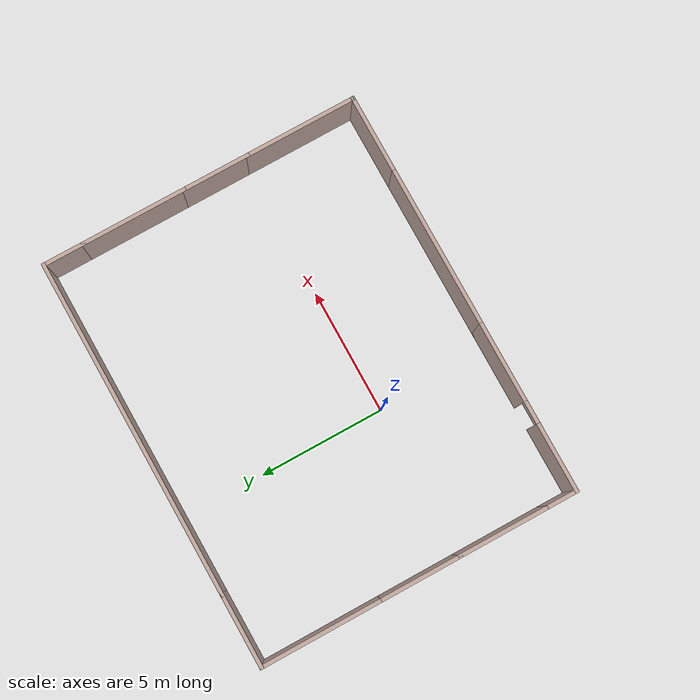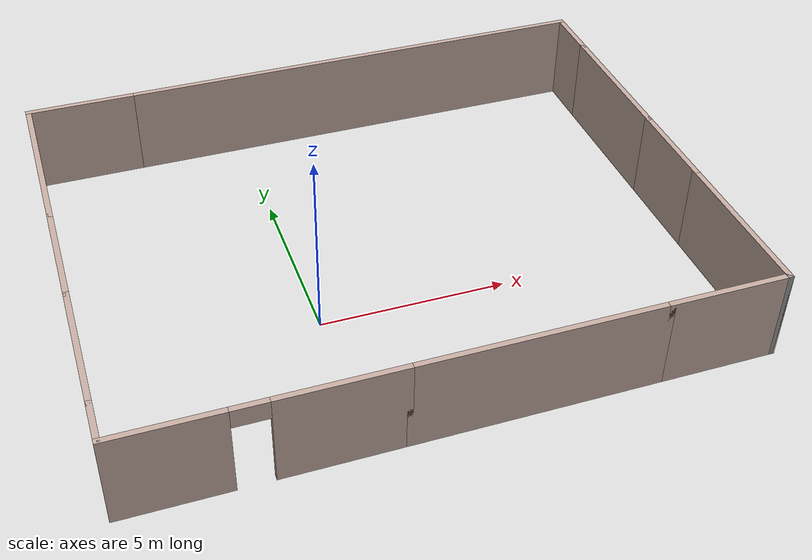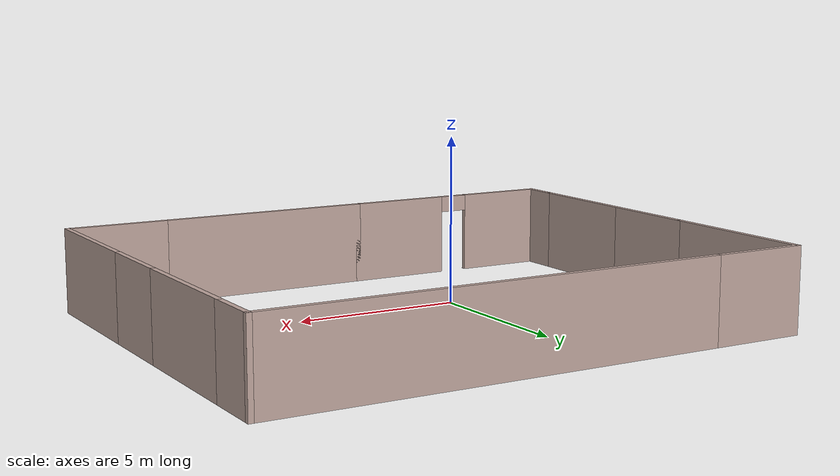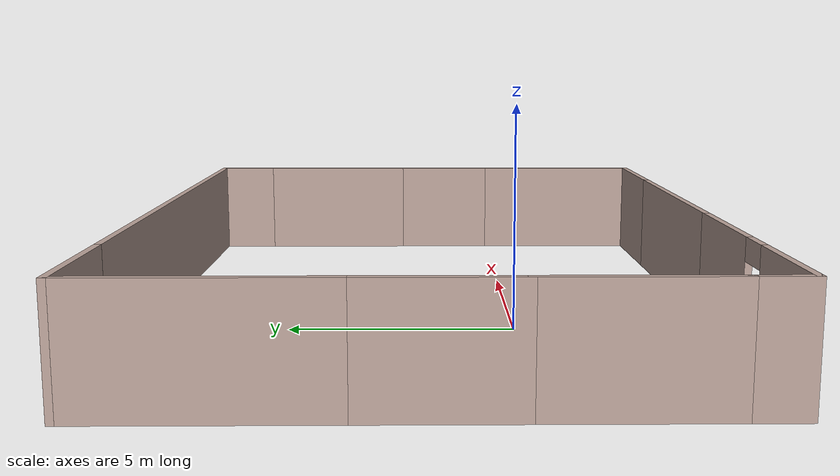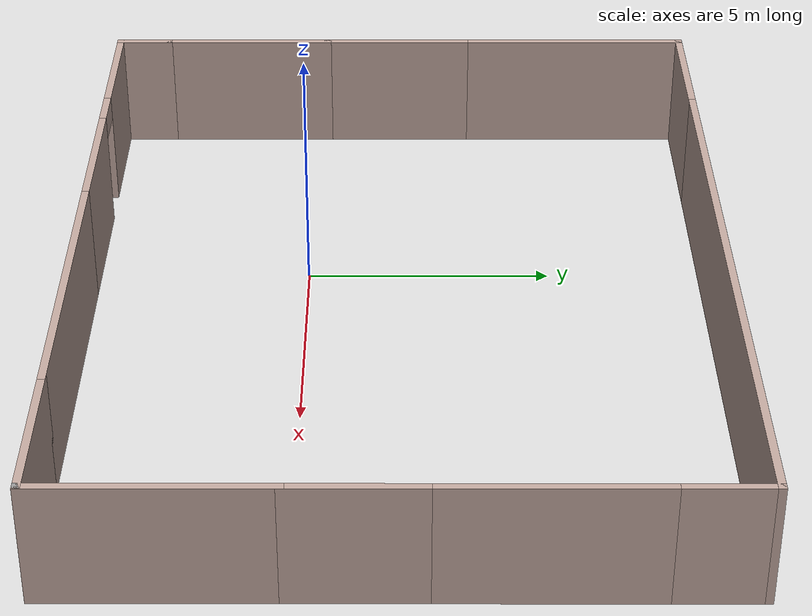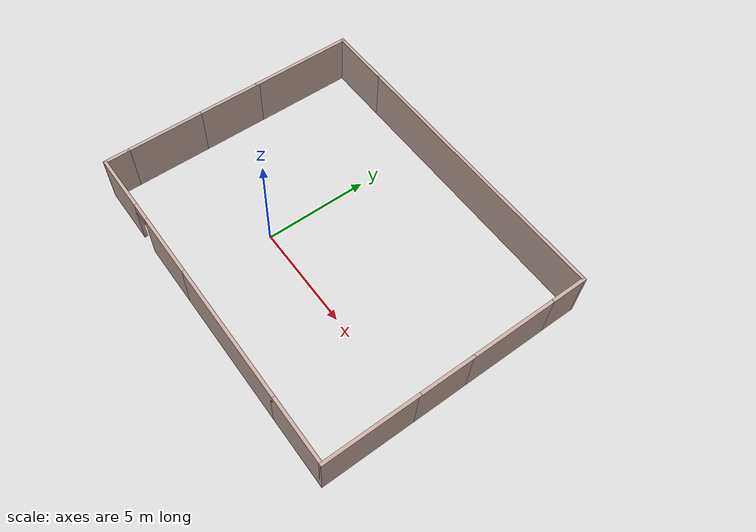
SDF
<?xml version='1.0'?>
<sdf version='1.7'>
  <model name='my_world'>
    <pose>2.15 1.895 0 0 -0 0</pose>
    <link name='Wall_0'>
      <collision name='Wall_0_Collision'>
        <geometry>
          <box>
            <size>6.5 0.15 2.5</size>
          </box>
        </geometry>
        <pose>0 0 1.25 0 -0 0</pose>
      </collision>
      <visual name='Wall_0_Visual'>
        <pose>0 0 1.25 0 -0 0</pose>
        <geometry>
          <box>
            <size>6.5 0.15 2.5</size>
          </box>
        </geometry>
        <material>
          <script>
            <uri>file://media/materials/scripts/gazebo.material</uri>
            <name>Gazebo/Grey</name>
          </script>
          <ambient>0.760784 0.662745 0.627451 1</ambient>
        </material>
        <meta>
          <layer>0</layer>
        </meta>
      </visual>
      <pose>1.825 -6.325 0 0 -0 0</pose>
    </link>
    <link name='Wall_10'>
      <collision name='Wall_10_Collision'>
        <geometry>
          <box>
            <size>4.25 0.15 2.5</size>
          </box>
        </geometry>
        <pose>0 0 1.25 0 -0 0</pose>
      </collision>
      <visual name='Wall_10_Visual'>
        <pose>0 0 1.25 0 -0 0</pose>
        <geometry>
          <box>
            <size>4.25 0.15 2.5</size>
          </box>
        </geometry>
        <material>
          <script>
            <uri>file://media/materials/scripts/gazebo.material</uri>
            <name>Gazebo/Grey</name>
          </script>
          <ambient>0.760784 0.662745 0.627451 1</ambient>
        </material>
        <meta>
          <layer>0</layer>
        </meta>
      </visual>
      <pose>8.1 2.675 0 0 -0 1.5708</pose>
    </link>
    <link name='Wall_12'>
      <collision name='Wall_12_Collision'>
        <geometry>
          <box>
            <size>1.75 0.15 2.5</size>
          </box>
        </geometry>
        <pose>0 0 1.25 0 -0 0</pose>
      </collision>
      <visual name='Wall_12_Visual'>
        <pose>0 0 1.25 0 -0 0</pose>
        <geometry>
          <box>
            <size>1.75 0.15 2.5</size>
          </box>
        </geometry>
        <material>
          <script>
            <uri>file://media/materials/scripts/gazebo.material</uri>
            <name>Gazebo/Grey</name>
          </script>
          <ambient>0.760784 0.662745 0.627451 1</ambient>
        </material>
        <meta>
          <layer>0</layer>
        </meta>
      </visual>
      <pose>8.1 5.525 0 0 -0 1.5708</pose>
    </link>
    <link name='Wall_13'>
      <collision name='Wall_13_Collision'>
        <geometry>
          <box>
            <size>13.5 0.15 2.5</size>
          </box>
        </geometry>
        <pose>0 0 1.25 0 -0 0</pose>
      </collision>
      <visual name='Wall_13_Visual'>
        <pose>0 0 1.25 0 -0 0</pose>
        <geometry>
          <box>
            <size>13.5 0.15 2.5</size>
          </box>
        </geometry>
        <material>
          <script>
            <uri>file://media/materials/scripts/gazebo.material</uri>
            <name>Gazebo/Grey</name>
          </script>
          <ambient>0.760784 0.662745 0.627451 1</ambient>
        </material>
        <meta>
          <layer>0</layer>
        </meta>
      </visual>
      <pose>1.425 6.325 0 0 -0 3.14159</pose>
    </link>
    <link name='Wall_15'>
      <collision name='Wall_15_Collision'>
        <geometry>
          <box>
            <size>3 0.15 2.5</size>
          </box>
        </geometry>
        <pose>0 0 1.25 0 -0 0</pose>
      </collision>
      <visual name='Wall_15_Visual'>
        <pose>0 0 1.25 0 -0 0</pose>
        <geometry>
          <box>
            <size>3 0.15 2.5</size>
          </box>
        </geometry>
        <material>
          <script>
            <uri>file://media/materials/scripts/gazebo.material</uri>
            <name>Gazebo/Grey</name>
          </script>
          <ambient>0.760784 0.662745 0.627451 1</ambient>
        </material>
        <meta>
          <layer>0</layer>
        </meta>
      </visual>
      <pose>-6.675 6.325 0 0 -0 3.14159</pose>
    </link>
    <link name='Wall_16'>
      <collision name='Wall_16_Collision'>
        <geometry>
          <box>
            <size>5 0.15 2.5</size>
          </box>
        </geometry>
        <pose>0 0 1.25 0 -0 0</pose>
      </collision>
      <visual name='Wall_16_Visual'>
        <pose>0 0 1.25 0 -0 0</pose>
        <geometry>
          <box>
            <size>5 0.15 2.5</size>
          </box>
        </geometry>
        <material>
          <script>
            <uri>file://media/materials/scripts/gazebo.material</uri>
            <name>Gazebo/Grey</name>
          </script>
          <ambient>0.760784 0.662745 0.627451 1</ambient>
        </material>
        <meta>
          <layer>0</layer>
        </meta>
      </visual>
      <pose>-8.1 3.9 0 0 -0 -1.5708</pose>
    </link>
    <link name='Wall_18'>
      <collision name='Wall_18_Collision'>
        <geometry>
          <box>
            <size>3.25 0.15 2.5</size>
          </box>
        </geometry>
        <pose>0 0 1.25 0 -0 0</pose>
      </collision>
      <visual name='Wall_18_Visual'>
        <pose>0 0 1.25 0 -0 0</pose>
        <geometry>
          <box>
            <size>3.25 0.15 2.5</size>
          </box>
        </geometry>
        <material>
          <script>
            <uri>file://media/materials/scripts/gazebo.material</uri>
            <name>Gazebo/Grey</name>
          </script>
          <ambient>0.760784 0.662745 0.627451 1</ambient>
        </material>
        <meta>
          <layer>0</layer>
        </meta>
      </visual>
      <pose>-8.1 -0.075 0 0 -0 -1.5708</pose>
    </link>
    <link name='Wall_20'>
      <collision name='Wall_20_Collision'>
        <geometry>
          <box>
            <size>3.75 0.15 2.5</size>
          </box>
        </geometry>
        <pose>0 0 1.25 0 -0 0</pose>
      </collision>
      <visual name='Wall_20_Visual'>
        <pose>0 0 1.25 0 -0 0</pose>
        <geometry>
          <box>
            <size>3.75 0.15 2.5</size>
          </box>
        </geometry>
        <material>
          <script>
            <uri>file://media/materials/scripts/gazebo.material</uri>
            <name>Gazebo/Grey</name>
          </script>
          <ambient>0.760784 0.662745 0.627451 1</ambient>
        </material>
        <meta>
          <layer>0</layer>
        </meta>
      </visual>
      <pose>-8.1 -3.425 0 0 -0 -1.5708</pose>
    </link>
    <link name='Wall_22'>
      <collision name='Wall_22_Collision'>
        <geometry>
          <box>
            <size>1.25 0.15 2.5</size>
          </box>
        </geometry>
        <pose>0 0 1.25 0 -0 0</pose>
      </collision>
      <visual name='Wall_22_Visual'>
        <pose>0 0 1.25 0 -0 0</pose>
        <geometry>
          <box>
            <size>1.25 0.15 2.5</size>
          </box>
        </geometry>
        <material>
          <script>
            <uri>file://media/materials/scripts/gazebo.material</uri>
            <name>Gazebo/Grey</name>
          </script>
          <ambient>0.760784 0.662745 0.627451 1</ambient>
        </material>
        <meta>
          <layer>0</layer>
        </meta>
      </visual>
      <pose>-8.1 -5.775 0 0 -0 -1.5708</pose>
    </link>
    <link name='Wall_23'>
      <pose>-4.725 -6.325 0 0 -0 0</pose>
      <visual name='Wall_23_Visual_0'>
        <pose>-2.0475 0 1.25 0 -0 0</pose>
        <geometry>
          <box>
            <size>2.805 0.15 2.5</size>
          </box>
        </geometry>
        <material>
          <script>
            <uri>file://media/materials/scripts/gazebo.material</uri>
            <name>Gazebo/Grey</name>
          </script>
          <ambient>0.760784 0.662745 0.627451 1</ambient>
        </material>
        <meta>
          <layer>0</layer>
        </meta>
      </visual>
      <collision name='Wall_23_Collision_0'>
        <geometry>
          <box>
            <size>2.805 0.15 2.5</size>
          </box>
        </geometry>
        <pose>-2.0475 0 1.25 0 -0 0</pose>
      </collision>
      <visual name='Wall_23_Visual_1'>
        <pose>1.8525 0 1.25 0 -0 0</pose>
        <geometry>
          <box>
            <size>3.195 0.15 2.5</size>
          </box>
        </geometry>
        <material>
          <script>
            <uri>file://media/materials/scripts/gazebo.material</uri>
            <name>Gazebo/Grey</name>
          </script>
          <ambient>0.760784 0.662745 0.627451 1</ambient>
        </material>
        <meta>
          <layer>0</layer>
        </meta>
      </visual>
      <collision name='Wall_23_Collision_1'>
        <geometry>
          <box>
            <size>3.195 0.15 2.5</size>
          </box>
        </geometry>
        <pose>1.8525 0 1.25 0 -0 0</pose>
      </collision>
      <visual name='Wall_23_Visual_2'>
        <pose>-0.195 0 2.25 0 -0 0</pose>
        <geometry>
          <box>
            <size>0.9 0.15 0.5</size>
          </box>
        </geometry>
        <material>
          <script>
            <uri>file://media/materials/scripts/gazebo.material</uri>
            <name>Gazebo/Grey</name>
          </script>
          <ambient>0.760784 0.662745 0.627451 1</ambient>
        </material>
        <meta>
          <layer>0</layer>
        </meta>
      </visual>
      <collision name='Wall_23_Collision_2'>
        <geometry>
          <box>
            <size>0.9 0.15 0.5</size>
          </box>
        </geometry>
        <pose>-0.195 0 2.25 0 -0 0</pose>
      </collision>
    </link>
    <link name='Wall_4'>
      <collision name='Wall_4_Collision'>
        <geometry>
          <box>
            <size>3.25 0.15 2.5</size>
          </box>
        </geometry>
        <pose>0 0 1.25 0 -0 0</pose>
      </collision>
      <visual name='Wall_4_Visual'>
        <pose>0 0 1.25 0 -0 0</pose>
        <geometry>
          <box>
            <size>3.25 0.15 2.5</size>
          </box>
        </geometry>
        <material>
          <script>
            <uri>file://media/materials/scripts/gazebo.material</uri>
            <name>Gazebo/Grey</name>
          </script>
          <ambient>0.760784 0.662745 0.627451 1</ambient>
        </material>
        <meta>
          <layer>0</layer>
        </meta>
      </visual>
      <pose>6.55 -6.325 0 0 -0 0</pose>
    </link>
    <link name='Wall_5'>
      <collision name='Wall_5_Collision'>
        <geometry>
          <box>
            <size>0.15 0.15 2.5</size>
          </box>
        </geometry>
        <pose>0 0 1.25 0 -0 0</pose>
      </collision>
      <visual name='Wall_5_Visual'>
        <pose>0 0 1.25 0 -0 0</pose>
        <geometry>
          <box>
            <size>0.15 0.15 2.5</size>
          </box>
        </geometry>
        <material>
          <script>
            <uri>file://media/materials/scripts/gazebo.material</uri>
            <name>Gazebo/Grey</name>
          </script>
          <ambient>1 1 1 1</ambient>
        </material>
        <meta>
          <layer>0</layer>
        </meta>
      </visual>
      <pose>8.1 -6.325 0 0 -0 0</pose>
    </link>
    <link name='Wall_6'>
      <collision name='Wall_6_Collision'>
        <geometry>
          <box>
            <size>4.5 0.15 2.5</size>
          </box>
        </geometry>
        <pose>0 0 1.25 0 -0 0</pose>
      </collision>
      <visual name='Wall_6_Visual'>
        <pose>0 0 1.25 0 -0 0</pose>
        <geometry>
          <box>
            <size>4.5 0.15 2.5</size>
          </box>
        </geometry>
        <material>
          <script>
            <uri>file://media/materials/scripts/gazebo.material</uri>
            <name>Gazebo/Grey</name>
          </script>
          <ambient>0.760784 0.662745 0.627451 1</ambient>
        </material>
        <meta>
          <layer>0</layer>
        </meta>
      </visual>
      <pose>8.1 -4.15 0 0 -0 1.5708</pose>
    </link>
    <link name='Wall_8'>
      <collision name='Wall_8_Collision'>
        <geometry>
          <box>
            <size>2.75 0.15 2.5</size>
          </box>
        </geometry>
        <pose>0 0 1.25 0 -0 0</pose>
      </collision>
      <visual name='Wall_8_Visual'>
        <pose>0 0 1.25 0 -0 0</pose>
        <geometry>
          <box>
            <size>2.75 0.15 2.5</size>
          </box>
        </geometry>
        <material>
          <script>
            <uri>file://media/materials/scripts/gazebo.material</uri>
            <name>Gazebo/Grey</name>
          </script>
          <ambient>0.760784 0.662745 0.627451 1</ambient>
        </material>
        <meta>
          <layer>0</layer>
        </meta>
      </visual>
      <pose>8.1 -0.675 0 0 -0 1.5708</pose>
    </link>
    <static>1</static>
  </model>
</sdf>
